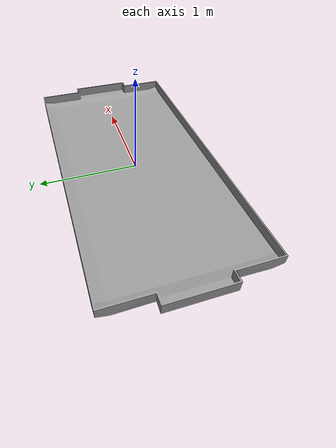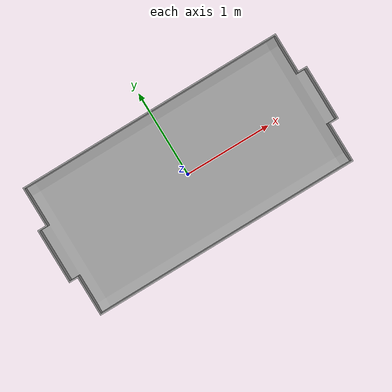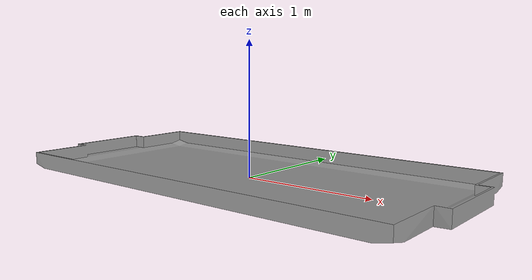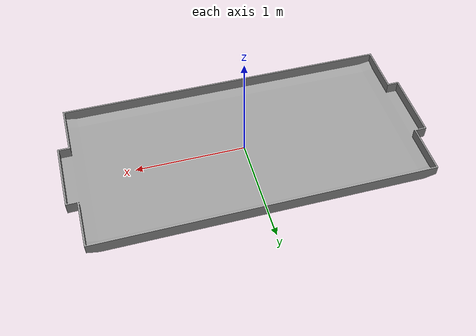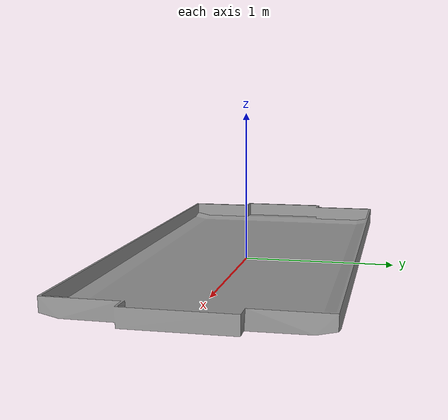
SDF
<?xml version='1.0'?>
<sdf version='1.4'>
  <model name="soccer_field">
    <static>true</static>
    <link name="link">
      <pose>0 0 0 0 0 0</pose>
      <collision name="collision">
        <geometry>
          <mesh><uri>model://field/meshes/field6.dae</uri></mesh>
        </geometry>
        <surface>
          <friction>
            <ode>
              <mu>100</mu>
              <mu2>50</mu2>
            </ode>
          </friction>
        </surface>
      </collision>
      <visual name="visual">
        <cast_shadows>false</cast_shadows>
        <geometry>
          <mesh><uri>model://field/meshes/field6.dae</uri></mesh>
        </geometry>
        <material>
          <ambient>.3 .3 .3 1</ambient>
          <diffuse>.6 .6 .6 1</diffuse>
          <specular>0.01 0.01 0.01 1</specular>
          <emissive>0 0 0 0</emissive>
        </material>
      </visual>
    </link>
  </model>
</sdf>
